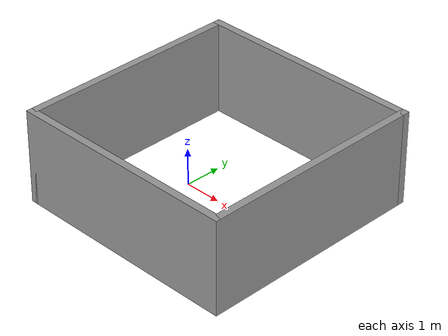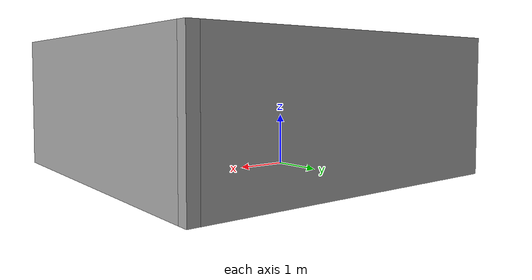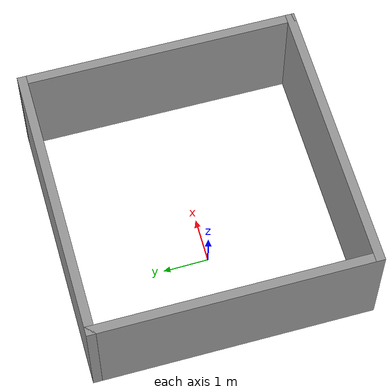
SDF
<?xml version='1.0'?>
<sdf version='1.4'>
  <model name='basicRoom'>
    <link name='Wall_10'>
      <collision name='Wall_10_Collision'>
        <geometry>
          <box>
            <size>6.2 0.2 2.5</size>
          </box>
        </geometry>
        <pose>0 0 1.25 0 -0 0</pose>
      </collision>
      <visual name='Wall_10_Visual'>
        <pose>0 0 1.25 0 -0 0</pose>
        <geometry>
          <box>
            <size>6.2 0.2 2.5</size>
          </box>
        </geometry>
        <material>
          <script>
            <uri>file://media/materials/scripts/gazebo.material</uri>
            <name>Gazebo/Grey</name>
          </script>
        </material>
      </visual>
      <velocity_decay>
        <linear>0</linear>
        <angular>0</angular>
      </velocity_decay>
      <pose>4 0 0 0 -0 1.5708</pose>
    </link>
    <link name='Wall_11'>
      <collision name='Wall_11_Collision'>
        <geometry>
          <box>
            <size>6.2 0.2 2.5</size>
          </box>
        </geometry>
        <pose>0 0 1.25 0 -0 0</pose>
      </collision>
      <visual name='Wall_11_Visual'>
        <pose>0 0 1.25 0 -0 0</pose>
        <geometry>
          <box>
            <size>6.2 0.2 2.5</size>
          </box>
        </geometry>
        <material>
          <script>
            <uri>file://media/materials/scripts/gazebo.material</uri>
            <name>Gazebo/Grey</name>
          </script>
        </material>
      </visual>
      <velocity_decay>
        <linear>0</linear>
        <angular>0</angular>
      </velocity_decay>
      <pose>1 3 0 0 -0 3.14159</pose>
    </link>
    <link name='Wall_12'>
      <collision name='Wall_12_Collision'>
        <geometry>
          <box>
            <size>6.2 0.2 2.5</size>
          </box>
        </geometry>
        <pose>0 0 1.25 0 -0 0</pose>
      </collision>
      <visual name='Wall_12_Visual'>
        <pose>0 0 1.25 0 -0 0</pose>
        <geometry>
          <box>
            <size>6.2 0.2 2.5</size>
          </box>
        </geometry>
        <material>
          <script>
            <uri>file://media/materials/scripts/gazebo.material</uri>
            <name>Gazebo/Grey</name>
          </script>
        </material>
      </visual>
      <velocity_decay>
        <linear>0</linear>
        <angular>0</angular>
      </velocity_decay>
      <pose>-2 0 0 0 0 -1.5708</pose>
    </link>
    <link name='Wall_9'>
      <collision name='Wall_9_Collision'>
        <geometry>
          <box>
            <size>6.2 0.2 2.5</size>
          </box>
        </geometry>
        <pose>0 0 1.25 0 -0 0</pose>
      </collision>
      <visual name='Wall_9_Visual'>
        <pose>0 0 1.25 0 -0 0</pose>
        <geometry>
          <box>
            <size>6.2 0.2 2.5</size>
          </box>
        </geometry>
        <material>
          <script>
            <uri>file://media/materials/scripts/gazebo.material</uri>
            <name>Gazebo/Grey</name>
          </script>
        </material>
      </visual>
      <velocity_decay>
        <linear>0</linear>
        <angular>0</angular>
      </velocity_decay>
      <pose>1 -3 0 0 -0 0</pose>
    </link>
    <static>1</static>
  </model>
</sdf>
